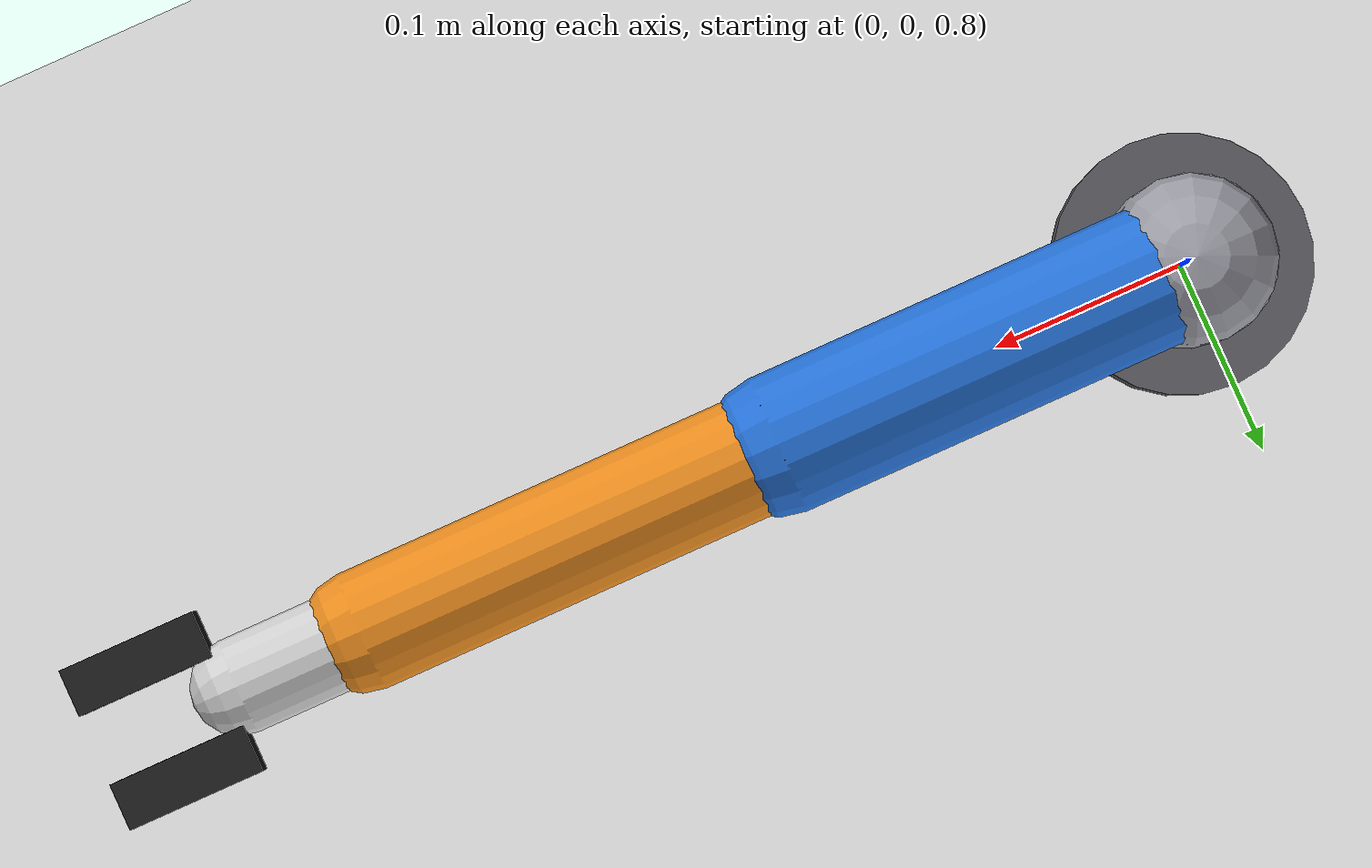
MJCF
<!-- Standalone MJCF wrapping the serial arm subtree (mirror of scene_teleop arm). Prefer scene_teleop.xml for simulation. -->

<mujoco model="five_dof_arm_stub">
  <compiler angle="radian" eulerseq="xyz" autolimits="true"/>

  <option timestep="0.002" gravity="0 0 -9.81"/>

  <worldbody>
    <light directional="true" diffuse="0.9 0.9 0.9" pos="1 3 8" dir="-1 -3 -8"/>
    <geom name="stub_floor" type="plane" size="3 3 0.05" rgba="0.93 0.93 0.93 1"/>
    <!-- Arm definition aligned with scene_teleop robot_root subtree — keep lengths consistent with robot_kinematics.yaml -->
    <body name="robot_root" pos="0 0 0.785">
      <geom name="base_plate" type="cylinder" pos="0 0 0.02" size="0.065 0.02" rgba="0.35 0.35 0.38 1"/>
      <body name="link_yaw" pos="0 0 0.035">
        <joint name="jnt1_base_z" type="hinge" axis="0 0 1" range="-2.793 2.793" damping="25" armature="0.06"/>
        <geom name="g_yaw" type="capsule" fromto="0 0 0 0 0 0.085" size="0.042" rgba="0.62 0.62 0.66 1"/>
        <body name="shoulder_yaw" pos="0 0 0.088">
          <joint name="jnt2_shoulder_y" type="hinge" axis="0 1 0" range="-1.571 1.571" damping="20" armature="0.04"/>
          <geom name="upper_arm" type="capsule" fromto="0 0 0 0.22 0 0" size="0.035" rgba="0.15 0.45 0.85 1"/>
          <body name="elbow_hub" pos="0.22 0 0">
            <joint name="jnt3_elbow_y" type="hinge" axis="0 1 0" range="-1.571 1.571" damping="14" armature="0.03"/>
            <geom name="forearm" type="capsule" fromto="0 0 0 0.22 0 0" size="0.03" rgba="0.92 0.55 0.12 1"/>
            <body name="wrist_pitch_hub" pos="0.22 0 0">
              <joint name="jnt4_wrist_y" type="hinge" axis="0 1 0" range="-2.094 2.094" damping="12" armature="0.02"/>
              <geom name="wrist_geom" type="capsule" fromto="0 0 0 0.065 0 0" size="0.024" rgba="0.82 0.82 0.82 1"/>
              <body name="wrist_roll" pos="0.065 0 0">
                <joint name="jnt5_gripper_z" type="hinge" axis="0 0 1" range="-3.142 3.142" damping="10" armature="0.02"/>
                <geom name="finger_l" type="box" pos="0.04 0.03 0" size="0.035 0.012 0.018" rgba="0.12 0.12 0.12 1"/>
                <geom name="finger_r" type="box" pos="0.04 -0.03 0" size="0.035 0.012 0.018" rgba="0.12 0.12 0.12 1"/>
              </body>
            </body>
          </body>
        </body>
      </body>
    </body>
  </worldbody>

</mujoco>
